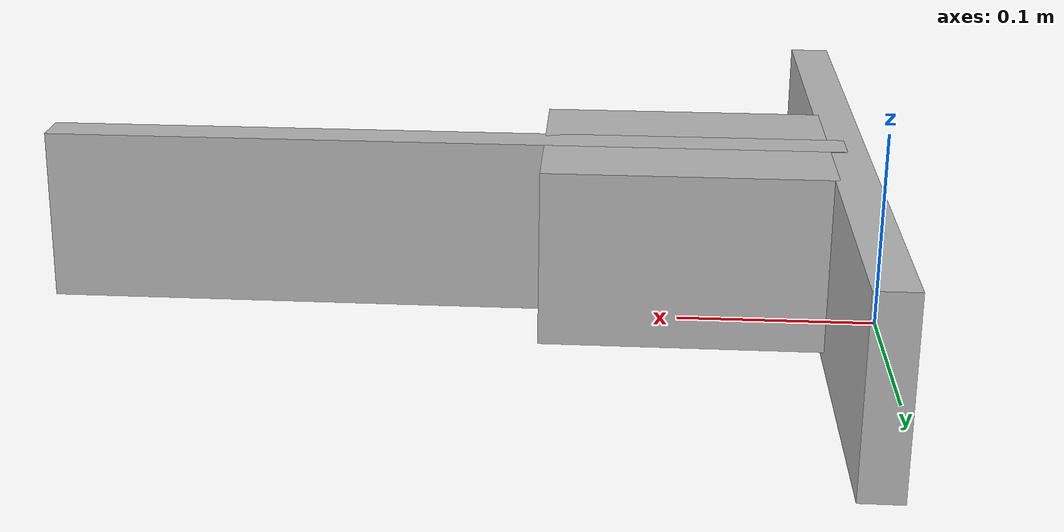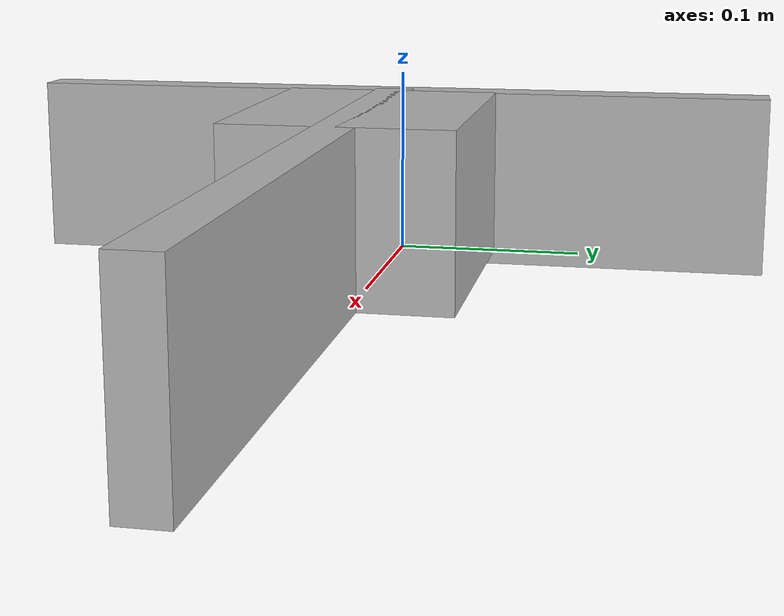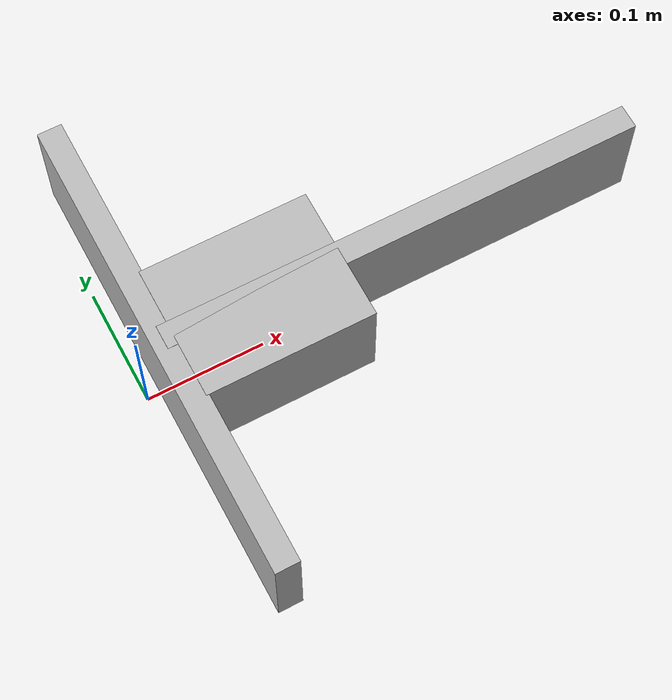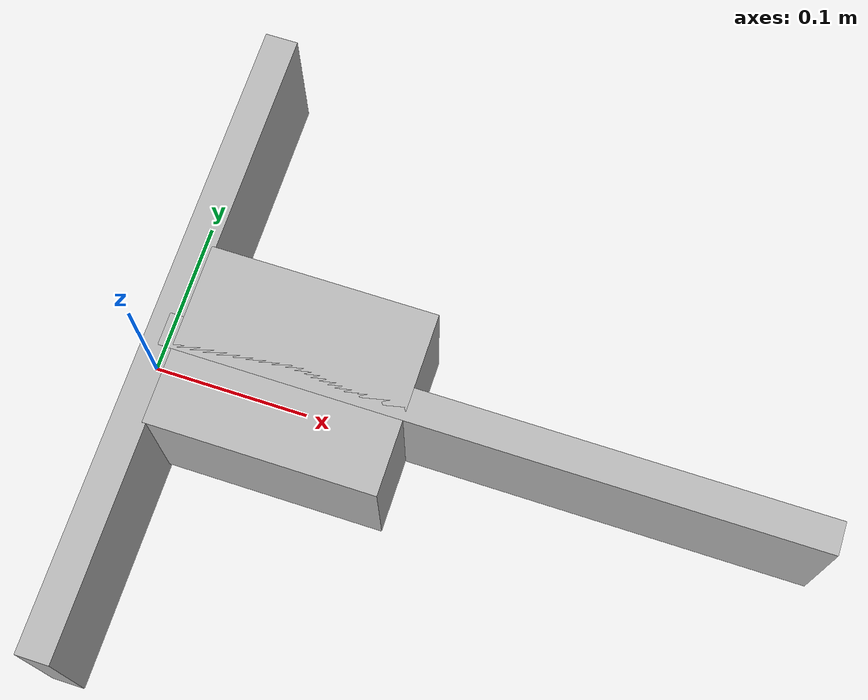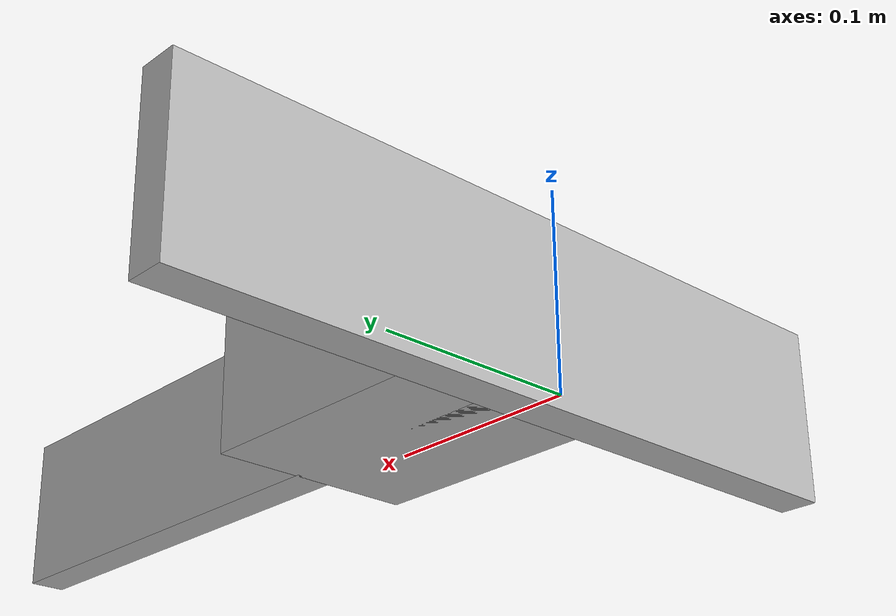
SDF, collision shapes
<?xml version='1.0'?>
<sdf version='1.6'>
  <model name='tBracePart'>
    <model name='t_brace_part'>
      <link name='link'>
        <inertial>
          <pose frame=''>0.22079 0 0.04663 0 -0 0</pose>
          <mass>0.5</mass>
          <inertia>
            <ixx>0.00698181</ixx>
            <ixy>0</ixy>
            <ixz>0</ixz>
            <iyy>0.00703473</iyy>
            <iyz>0</iyz>
            <izz>0.0132918</izz>
          </inertia>
        </inertial>
        <collision name='collision1'>
          <pose frame=''>0.02115 0 0.04663 0 -0 0</pose>
          <geometry>
            <box>
              <size>0.02038 0.39858 0.09326</size>
            </box>
          </geometry>
        </collision>
        <collision name='collision2'>
          <pose frame=''>0.22079 0 0.05013 0 -0 0</pose>
          <geometry>
            <box>
              <size>0.40017 0.02038 0.0866</size>
            </box>
          </geometry>
        </collision>
        <collision name='collision3'>
          <pose frame=''>0.09895 0 0.05013 0 -0 0</pose>
          <geometry>
            <box>
              <size>0.13997 0.11302 0.0866</size>
            </box>
          </geometry>
        </collision>
        <visual name='visual'>
          <geometry>
            <mesh>
              <uri>model://t_brace_part/meshes/t_brace.dae</uri>
            </mesh>
          </geometry>
          <material>
            <script>
              <uri>model://arm_part/materials/scripts</uri>
              <uri>model://arm_part/materials/textures</uri>
              <name>ArmPart/Diffuse</name>
            </script>
          </material>
        </visual>
      </link>
      <pose frame=''>3e-06 4e-06 0 0 -0 0</pose>
    </model>
    <static>0</static>
    <allow_auto_disable>1</allow_auto_disable>
  </model>
</sdf>
